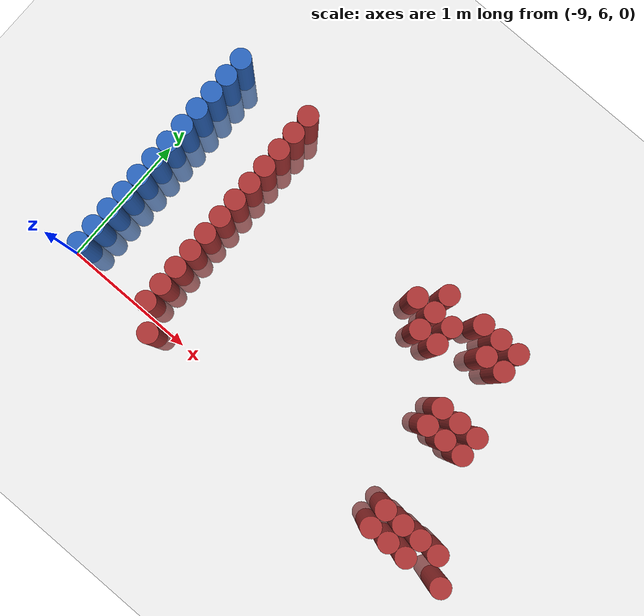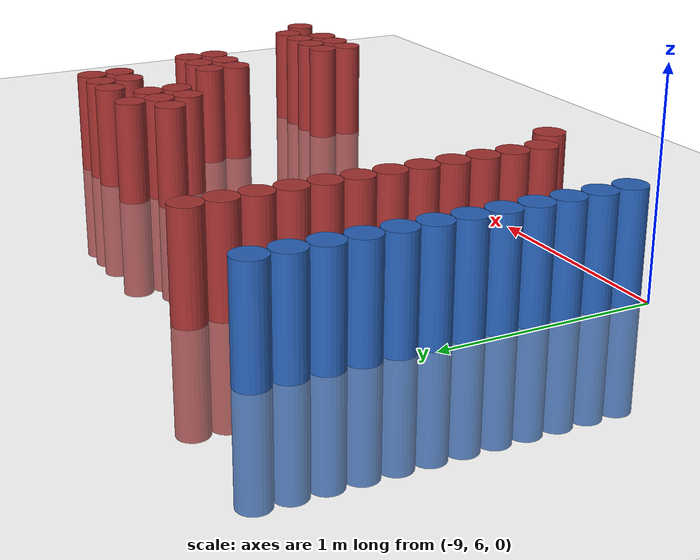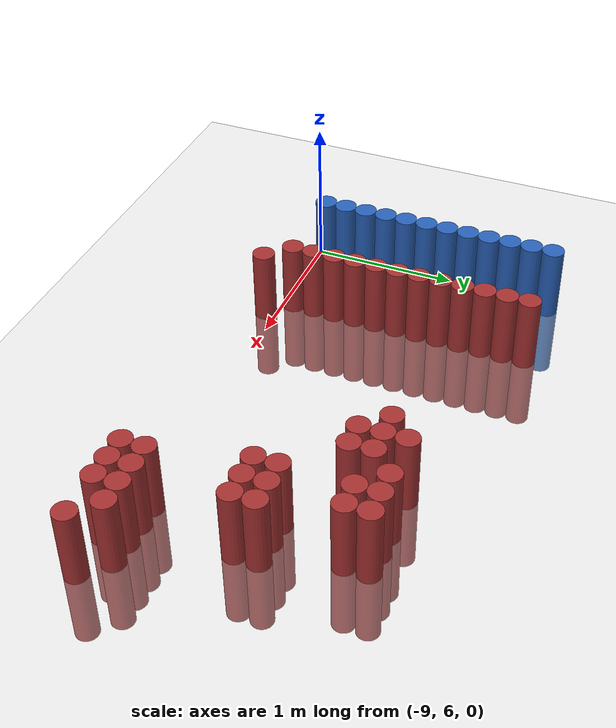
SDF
<sdf version="1.6">
 <world name="default">
  <model name="ground_plane">
   <static>1</static>
   <link name="link">
    <collision name="collision">
     <geometry><plane><normal>0 0 1</normal><size>100 100</size></plane></geometry>
     <surface><friction><ode><mu>100</mu><mu2>50</mu2></ode></friction></surface>
    </collision>
    <visual name="visual">
     <cast_shadows>0</cast_shadows>
     <geometry><plane><normal>0 0 1</normal><size>100 100</size></plane></geometry>
     <material>
      <script><uri>file://media/materials/scripts/gazebo.material</uri><name>Gazebo/Grey</name></script>
     </material>
    </visual>
   </link>
  </model>
  <model name="unit_cylinder_131">
   <static>1</static>
   <pose>-8.925000 6.075000 0.000000 0.000000 0.000000 0.000000</pose>
   <link name="link">
    <inertial>
     <mass>1</mass>
     <inertia><ixx>0.145833</ixx><ixy>0</ixy><ixz>0</ixz><iyy>0.145833</iyy><iyz>0</iyz><izz>0.125</izz></inertia>
    </inertial>
    <collision name="collision">
     <geometry><cylinder><radius>0.075000</radius><length>1</length></cylinder></geometry>
    </collision>
    <visual name="visual">
     <geometry><cylinder><radius>0.075000</radius><length>1</length></cylinder></geometry>
     <material>
      <ambient>0.152000 0.379000 0.720000 1</ambient>
      <diffuse>0.152000 0.379000 0.720000 1</diffuse>
     </material>
     <material>
      <script><name>Gazebo/Grey</name><uri>file://media/materials/scripts/gazebo.material</uri></script>
     </material>
    </visual>
   </link>
  </model>
  <model name="unit_cylinder_132">
   <static>1</static>
   <pose>-8.925000 6.225000 0.000000 0.000000 0.000000 0.000000</pose>
   <link name="link">
    <inertial>
     <mass>1</mass>
     <inertia><ixx>0.145833</ixx><ixy>0</ixy><ixz>0</ixz><iyy>0.145833</iyy><iyz>0</iyz><izz>0.125</izz></inertia>
    </inertial>
    <collision name="collision">
     <geometry><cylinder><radius>0.075000</radius><length>1</length></cylinder></geometry>
    </collision>
    <visual name="visual">
     <geometry><cylinder><radius>0.075000</radius><length>1</length></cylinder></geometry>
     <material>
      <ambient>0.152000 0.379000 0.720000 1</ambient>
      <diffuse>0.152000 0.379000 0.720000 1</diffuse>
     </material>
     <material>
      <script><name>Gazebo/Grey</name><uri>file://media/materials/scripts/gazebo.material</uri></script>
     </material>
    </visual>
   </link>
  </model>
  <model name="unit_cylinder_133">
   <static>1</static>
   <pose>-8.925000 6.375000 0.000000 0.000000 0.000000 0.000000</pose>
   <link name="link">
    <inertial>
     <mass>1</mass>
     <inertia><ixx>0.145833</ixx><ixy>0</ixy><ixz>0</ixz><iyy>0.145833</iyy><iyz>0</iyz><izz>0.125</izz></inertia>
    </inertial>
    <collision name="collision">
     <geometry><cylinder><radius>0.075000</radius><length>1</length></cylinder></geometry>
    </collision>
    <visual name="visual">
     <geometry><cylinder><radius>0.075000</radius><length>1</length></cylinder></geometry>
     <material>
      <ambient>0.152000 0.379000 0.720000 1</ambient>
      <diffuse>0.152000 0.379000 0.720000 1</diffuse>
     </material>
     <material>
      <script><name>Gazebo/Grey</name><uri>file://media/materials/scripts/gazebo.material</uri></script>
     </material>
    </visual>
   </link>
  </model>
  <model name="unit_cylinder_134">
   <static>1</static>
   <pose>-8.925000 6.525000 0.000000 0.000000 0.000000 0.000000</pose>
   <link name="link">
    <inertial>
     <mass>1</mass>
     <inertia><ixx>0.145833</ixx><ixy>0</ixy><ixz>0</ixz><iyy>0.145833</iyy><iyz>0</iyz><izz>0.125</izz></inertia>
    </inertial>
    <collision name="collision">
     <geometry><cylinder><radius>0.075000</radius><length>1</length></cylinder></geometry>
    </collision>
    <visual name="visual">
     <geometry><cylinder><radius>0.075000</radius><length>1</length></cylinder></geometry>
     <material>
      <ambient>0.152000 0.379000 0.720000 1</ambient>
      <diffuse>0.152000 0.379000 0.720000 1</diffuse>
     </material>
     <material>
      <script><name>Gazebo/Grey</name><uri>file://media/materials/scripts/gazebo.material</uri></script>
     </material>
    </visual>
   </link>
  </model>
  <model name="unit_cylinder_135">
   <static>1</static>
   <pose>-8.925000 6.675000 0.000000 0.000000 0.000000 0.000000</pose>
   <link name="link">
    <inertial>
     <mass>1</mass>
     <inertia><ixx>0.145833</ixx><ixy>0</ixy><ixz>0</ixz><iyy>0.145833</iyy><iyz>0</iyz><izz>0.125</izz></inertia>
    </inertial>
    <collision name="collision">
     <geometry><cylinder><radius>0.075000</radius><length>1</length></cylinder></geometry>
    </collision>
    <visual name="visual">
     <geometry><cylinder><radius>0.075000</radius><length>1</length></cylinder></geometry>
     <material>
      <ambient>0.152000 0.379000 0.720000 1</ambient>
      <diffuse>0.152000 0.379000 0.720000 1</diffuse>
     </material>
     <material>
      <script><name>Gazebo/Grey</name><uri>file://media/materials/scripts/gazebo.material</uri></script>
     </material>
    </visual>
   </link>
  </model>
  <model name="unit_cylinder_136">
   <static>1</static>
   <pose>-8.925000 6.825000 0.000000 0.000000 0.000000 0.000000</pose>
   <link name="link">
    <inertial>
     <mass>1</mass>
     <inertia><ixx>0.145833</ixx><ixy>0</ixy><ixz>0</ixz><iyy>0.145833</iyy><iyz>0</iyz><izz>0.125</izz></inertia>
    </inertial>
    <collision name="collision">
     <geometry><cylinder><radius>0.075000</radius><length>1</length></cylinder></geometry>
    </collision>
    <visual name="visual">
     <geometry><cylinder><radius>0.075000</radius><length>1</length></cylinder></geometry>
     <material>
      <ambient>0.152000 0.379000 0.720000 1</ambient>
      <diffuse>0.152000 0.379000 0.720000 1</diffuse>
     </material>
     <material>
      <script><name>Gazebo/Grey</name><uri>file://media/materials/scripts/gazebo.material</uri></script>
     </material>
    </visual>
   </link>
  </model>
  <model name="unit_cylinder_137">
   <static>1</static>
   <pose>-8.925000 6.975000 0.000000 0.000000 0.000000 0.000000</pose>
   <link name="link">
    <inertial>
     <mass>1</mass>
     <inertia><ixx>0.145833</ixx><ixy>0</ixy><ixz>0</ixz><iyy>0.145833</iyy><iyz>0</iyz><izz>0.125</izz></inertia>
    </inertial>
    <collision name="collision">
     <geometry><cylinder><radius>0.075000</radius><length>1</length></cylinder></geometry>
    </collision>
    <visual name="visual">
     <geometry><cylinder><radius>0.075000</radius><length>1</length></cylinder></geometry>
     <material>
      <ambient>0.152000 0.379000 0.720000 1</ambient>
      <diffuse>0.152000 0.379000 0.720000 1</diffuse>
     </material>
     <material>
      <script><name>Gazebo/Grey</name><uri>file://media/materials/scripts/gazebo.material</uri></script>
     </material>
    </visual>
   </link>
  </model>
  <model name="unit_cylinder_138">
   <static>1</static>
   <pose>-8.925000 7.125000 0.000000 0.000000 0.000000 0.000000</pose>
   <link name="link">
    <inertial>
     <mass>1</mass>
     <inertia><ixx>0.145833</ixx><ixy>0</ixy><ixz>0</ixz><iyy>0.145833</iyy><iyz>0</iyz><izz>0.125</izz></inertia>
    </inertial>
    <collision name="collision">
     <geometry><cylinder><radius>0.075000</radius><length>1</length></cylinder></geometry>
    </collision>
    <visual name="visual">
     <geometry><cylinder><radius>0.075000</radius><length>1</length></cylinder></geometry>
     <material>
      <ambient>0.152000 0.379000 0.720000 1</ambient>
      <diffuse>0.152000 0.379000 0.720000 1</diffuse>
     </material>
     <material>
      <script><name>Gazebo/Grey</name><uri>file://media/materials/scripts/gazebo.material</uri></script>
     </material>
    </visual>
   </link>
  </model>
  <model name="unit_cylinder_139">
   <static>1</static>
   <pose>-8.925000 7.275000 0.000000 0.000000 0.000000 0.000000</pose>
   <link name="link">
    <inertial>
     <mass>1</mass>
     <inertia><ixx>0.145833</ixx><ixy>0</ixy><ixz>0</ixz><iyy>0.145833</iyy><iyz>0</iyz><izz>0.125</izz></inertia>
    </inertial>
    <collision name="collision">
     <geometry><cylinder><radius>0.075000</radius><length>1</length></cylinder></geometry>
    </collision>
    <visual name="visual">
     <geometry><cylinder><radius>0.075000</radius><length>1</length></cylinder></geometry>
     <material>
      <ambient>0.152000 0.379000 0.720000 1</ambient>
      <diffuse>0.152000 0.379000 0.720000 1</diffuse>
     </material>
     <material>
      <script><name>Gazebo/Grey</name><uri>file://media/materials/scripts/gazebo.material</uri></script>
     </material>
    </visual>
   </link>
  </model>
  <model name="unit_cylinder_140">
   <static>1</static>
   <pose>-8.925000 7.425000 0.000000 0.000000 0.000000 0.000000</pose>
   <link name="link">
    <inertial>
     <mass>1</mass>
     <inertia><ixx>0.145833</ixx><ixy>0</ixy><ixz>0</ixz><iyy>0.145833</iyy><iyz>0</iyz><izz>0.125</izz></inertia>
    </inertial>
    <collision name="collision">
     <geometry><cylinder><radius>0.075000</radius><length>1</length></cylinder></geometry>
    </collision>
    <visual name="visual">
     <geometry><cylinder><radius>0.075000</radius><length>1</length></cylinder></geometry>
     <material>
      <ambient>0.152000 0.379000 0.720000 1</ambient>
      <diffuse>0.152000 0.379000 0.720000 1</diffuse>
     </material>
     <material>
      <script><name>Gazebo/Grey</name><uri>file://media/materials/scripts/gazebo.material</uri></script>
     </material>
    </visual>
   </link>
  </model>
  <model name="unit_cylinder_141">
   <static>1</static>
   <pose>-8.925000 7.575000 0.000000 0.000000 0.000000 0.000000</pose>
   <link name="link">
    <inertial>
     <mass>1</mass>
     <inertia><ixx>0.145833</ixx><ixy>0</ixy><ixz>0</ixz><iyy>0.145833</iyy><iyz>0</iyz><izz>0.125</izz></inertia>
    </inertial>
    <collision name="collision">
     <geometry><cylinder><radius>0.075000</radius><length>1</length></cylinder></geometry>
    </collision>
    <visual name="visual">
     <geometry><cylinder><radius>0.075000</radius><length>1</length></cylinder></geometry>
     <material>
      <ambient>0.152000 0.379000 0.720000 1</ambient>
      <diffuse>0.152000 0.379000 0.720000 1</diffuse>
     </material>
     <material>
      <script><name>Gazebo/Grey</name><uri>file://media/materials/scripts/gazebo.material</uri></script>
     </material>
    </visual>
   </link>
  </model>
  <model name="unit_cylinder_142">
   <static>1</static>
   <pose>-8.925000 7.725000 0.000000 0.000000 0.000000 0.000000</pose>
   <link name="link">
    <inertial>
     <mass>1</mass>
     <inertia><ixx>0.145833</ixx><ixy>0</ixy><ixz>0</ixz><iyy>0.145833</iyy><iyz>0</iyz><izz>0.125</izz></inertia>
    </inertial>
    <collision name="collision">
     <geometry><cylinder><radius>0.075000</radius><length>1</length></cylinder></geometry>
    </collision>
    <visual name="visual">
     <geometry><cylinder><radius>0.075000</radius><length>1</length></cylinder></geometry>
     <material>
      <ambient>0.152000 0.379000 0.720000 1</ambient>
      <diffuse>0.152000 0.379000 0.720000 1</diffuse>
     </material>
     <material>
      <script><name>Gazebo/Grey</name><uri>file://media/materials/scripts/gazebo.material</uri></script>
     </material>
    </visual>
   </link>
  </model>
  <model name="unit_cylinder_163">
   <static>1</static>
   <pose>-8.325000 6.075000 0.000000 0.000000 0.000000 0.000000</pose>
   <link name="link">
    <inertial>
     <mass>1</mass>
     <inertia><ixx>0.145833</ixx><ixy>0</ixy><ixz>0</ixz><iyy>0.145833</iyy><iyz>0</iyz><izz>0.125</izz></inertia>
    </inertial>
    <collision name="collision">
     <geometry><cylinder><radius>0.075000</radius><length>1</length></cylinder></geometry>
    </collision>
    <visual name="visual">
     <geometry><cylinder><radius>0.075000</radius><length>1</length></cylinder></geometry>
     <material>
      <ambient>0.648000 0.192000 0.192000 1</ambient>
      <diffuse>0.648000 0.192000 0.192000 1</diffuse>
     </material>
     <material>
      <script><name>Gazebo/Grey</name><uri>file://media/materials/scripts/gazebo.material</uri></script>
     </material>
    </visual>
   </link>
  </model>
  <model name="unit_cylinder_164">
   <static>1</static>
   <pose>-8.325000 6.225000 0.000000 0.000000 0.000000 0.000000</pose>
   <link name="link">
    <inertial>
     <mass>1</mass>
     <inertia><ixx>0.145833</ixx><ixy>0</ixy><ixz>0</ixz><iyy>0.145833</iyy><iyz>0</iyz><izz>0.125</izz></inertia>
    </inertial>
    <collision name="collision">
     <geometry><cylinder><radius>0.075000</radius><length>1</length></cylinder></geometry>
    </collision>
    <visual name="visual">
     <geometry><cylinder><radius>0.075000</radius><length>1</length></cylinder></geometry>
     <material>
      <ambient>0.648000 0.192000 0.192000 1</ambient>
      <diffuse>0.648000 0.192000 0.192000 1</diffuse>
     </material>
     <material>
      <script><name>Gazebo/Grey</name><uri>file://media/materials/scripts/gazebo.material</uri></script>
     </material>
    </visual>
   </link>
  </model>
  <model name="unit_cylinder_165">
   <static>1</static>
   <pose>-8.325000 6.375000 0.000000 0.000000 0.000000 0.000000</pose>
   <link name="link">
    <inertial>
     <mass>1</mass>
     <inertia><ixx>0.145833</ixx><ixy>0</ixy><ixz>0</ixz><iyy>0.145833</iyy><iyz>0</iyz><izz>0.125</izz></inertia>
    </inertial>
    <collision name="collision">
     <geometry><cylinder><radius>0.075000</radius><length>1</length></cylinder></geometry>
    </collision>
    <visual name="visual">
     <geometry><cylinder><radius>0.075000</radius><length>1</length></cylinder></geometry>
     <material>
      <ambient>0.648000 0.192000 0.192000 1</ambient>
      <diffuse>0.648000 0.192000 0.192000 1</diffuse>
     </material>
     <material>
      <script><name>Gazebo/Grey</name><uri>file://media/materials/scripts/gazebo.material</uri></script>
     </material>
    </visual>
   </link>
  </model>
  <model name="unit_cylinder_166">
   <static>1</static>
   <pose>-8.325000 6.525000 0.000000 0.000000 0.000000 0.000000</pose>
   <link name="link">
    <inertial>
     <mass>1</mass>
     <inertia><ixx>0.145833</ixx><ixy>0</ixy><ixz>0</ixz><iyy>0.145833</iyy><iyz>0</iyz><izz>0.125</izz></inertia>
    </inertial>
    <collision name="collision">
     <geometry><cylinder><radius>0.075000</radius><length>1</length></cylinder></geometry>
    </collision>
    <visual name="visual">
     <geometry><cylinder><radius>0.075000</radius><length>1</length></cylinder></geometry>
     <material>
      <ambient>0.648000 0.192000 0.192000 1</ambient>
      <diffuse>0.648000 0.192000 0.192000 1</diffuse>
     </material>
     <material>
      <script><name>Gazebo/Grey</name><uri>file://media/materials/scripts/gazebo.material</uri></script>
     </material>
    </visual>
   </link>
  </model>
  <model name="unit_cylinder_167">
   <static>1</static>
   <pose>-8.325000 6.675000 0.000000 0.000000 0.000000 0.000000</pose>
   <link name="link">
    <inertial>
     <mass>1</mass>
     <inertia><ixx>0.145833</ixx><ixy>0</ixy><ixz>0</ixz><iyy>0.145833</iyy><iyz>0</iyz><izz>0.125</izz></inertia>
    </inertial>
    <collision name="collision">
     <geometry><cylinder><radius>0.075000</radius><length>1</length></cylinder></geometry>
    </collision>
    <visual name="visual">
     <geometry><cylinder><radius>0.075000</radius><length>1</length></cylinder></geometry>
     <material>
      <ambient>0.648000 0.192000 0.192000 1</ambient>
      <diffuse>0.648000 0.192000 0.192000 1</diffuse>
     </material>
     <material>
      <script><name>Gazebo/Grey</name><uri>file://media/materials/scripts/gazebo.material</uri></script>
     </material>
    </visual>
   </link>
  </model>
  <model name="unit_cylinder_168">
   <static>1</static>
   <pose>-8.325000 6.825000 0.000000 0.000000 0.000000 0.000000</pose>
   <link name="link">
    <inertial>
     <mass>1</mass>
     <inertia><ixx>0.145833</ixx><ixy>0</ixy><ixz>0</ixz><iyy>0.145833</iyy><iyz>0</iyz><izz>0.125</izz></inertia>
    </inertial>
    <collision name="collision">
     <geometry><cylinder><radius>0.075000</radius><length>1</length></cylinder></geometry>
    </collision>
    <visual name="visual">
     <geometry><cylinder><radius>0.075000</radius><length>1</length></cylinder></geometry>
     <material>
      <ambient>0.648000 0.192000 0.192000 1</ambient>
      <diffuse>0.648000 0.192000 0.192000 1</diffuse>
     </material>
     <material>
      <script><name>Gazebo/Grey</name><uri>file://media/materials/scripts/gazebo.material</uri></script>
     </material>
    </visual>
   </link>
  </model>
  <model name="unit_cylinder_169">
   <static>1</static>
   <pose>-8.325000 6.975000 0.000000 0.000000 0.000000 0.000000</pose>
   <link name="link">
    <inertial>
     <mass>1</mass>
     <inertia><ixx>0.145833</ixx><ixy>0</ixy><ixz>0</ixz><iyy>0.145833</iyy><iyz>0</iyz><izz>0.125</izz></inertia>
    </inertial>
    <collision name="collision">
     <geometry><cylinder><radius>0.075000</radius><length>1</length></cylinder></geometry>
    </collision>
    <visual name="visual">
     <geometry><cylinder><radius>0.075000</radius><length>1</length></cylinder></geometry>
     <material>
      <ambient>0.648000 0.192000 0.192000 1</ambient>
      <diffuse>0.648000 0.192000 0.192000 1</diffuse>
     </material>
     <material>
      <script><name>Gazebo/Grey</name><uri>file://media/materials/scripts/gazebo.material</uri></script>
     </material>
    </visual>
   </link>
  </model>
  <model name="unit_cylinder_170">
   <static>1</static>
   <pose>-8.325000 7.125000 0.000000 0.000000 0.000000 0.000000</pose>
   <link name="link">
    <inertial>
     <mass>1</mass>
     <inertia><ixx>0.145833</ixx><ixy>0</ixy><ixz>0</ixz><iyy>0.145833</iyy><iyz>0</iyz><izz>0.125</izz></inertia>
    </inertial>
    <collision name="collision">
     <geometry><cylinder><radius>0.075000</radius><length>1</length></cylinder></geometry>
    </collision>
    <visual name="visual">
     <geometry><cylinder><radius>0.075000</radius><length>1</length></cylinder></geometry>
     <material>
      <ambient>0.648000 0.192000 0.192000 1</ambient>
      <diffuse>0.648000 0.192000 0.192000 1</diffuse>
     </material>
     <material>
      <script><name>Gazebo/Grey</name><uri>file://media/materials/scripts/gazebo.material</uri></script>
     </material>
    </visual>
   </link>
  </model>
  <model name="unit_cylinder_171">
   <static>1</static>
   <pose>-8.325000 7.275000 0.000000 0.000000 0.000000 0.000000</pose>
   <link name="link">
    <inertial>
     <mass>1</mass>
     <inertia><ixx>0.145833</ixx><ixy>0</ixy><ixz>0</ixz><iyy>0.145833</iyy><iyz>0</iyz><izz>0.125</izz></inertia>
    </inertial>
    <collision name="collision">
     <geometry><cylinder><radius>0.075000</radius><length>1</length></cylinder></geometry>
    </collision>
    <visual name="visual">
     <geometry><cylinder><radius>0.075000</radius><length>1</length></cylinder></geometry>
     <material>
      <ambient>0.648000 0.192000 0.192000 1</ambient>
      <diffuse>0.648000 0.192000 0.192000 1</diffuse>
     </material>
     <material>
      <script><name>Gazebo/Grey</name><uri>file://media/materials/scripts/gazebo.material</uri></script>
     </material>
    </visual>
   </link>
  </model>
  <model name="unit_cylinder_172">
   <static>1</static>
   <pose>-8.325000 7.425000 0.000000 0.000000 0.000000 0.000000</pose>
   <link name="link">
    <inertial>
     <mass>1</mass>
     <inertia><ixx>0.145833</ixx><ixy>0</ixy><ixz>0</ixz><iyy>0.145833</iyy><iyz>0</iyz><izz>0.125</izz></inertia>
    </inertial>
    <collision name="collision">
     <geometry><cylinder><radius>0.075000</radius><length>1</length></cylinder></geometry>
    </collision>
    <visual name="visual">
     <geometry><cylinder><radius>0.075000</radius><length>1</length></cylinder></geometry>
     <material>
      <ambient>0.648000 0.192000 0.192000 1</ambient>
      <diffuse>0.648000 0.192000 0.192000 1</diffuse>
     </material>
     <material>
      <script><name>Gazebo/Grey</name><uri>file://media/materials/scripts/gazebo.material</uri></script>
     </material>
    </visual>
   </link>
  </model>
  <model name="unit_cylinder_173">
   <static>1</static>
   <pose>-8.325000 7.575000 0.000000 0.000000 0.000000 0.000000</pose>
   <link name="link">
    <inertial>
     <mass>1</mass>
     <inertia><ixx>0.145833</ixx><ixy>0</ixy><ixz>0</ixz><iyy>0.145833</iyy><iyz>0</iyz><izz>0.125</izz></inertia>
    </inertial>
    <collision name="collision">
     <geometry><cylinder><radius>0.075000</radius><length>1</length></cylinder></geometry>
    </collision>
    <visual name="visual">
     <geometry><cylinder><radius>0.075000</radius><length>1</length></cylinder></geometry>
     <material>
      <ambient>0.648000 0.192000 0.192000 1</ambient>
      <diffuse>0.648000 0.192000 0.192000 1</diffuse>
     </material>
     <material>
      <script><name>Gazebo/Grey</name><uri>file://media/materials/scripts/gazebo.material</uri></script>
     </material>
    </visual>
   </link>
  </model>
  <model name="unit_cylinder_174">
   <static>1</static>
   <pose>-8.325000 7.725000 0.000000 0.000000 0.000000 0.000000</pose>
   <link name="link">
    <inertial>
     <mass>1</mass>
     <inertia><ixx>0.145833</ixx><ixy>0</ixy><ixz>0</ixz><iyy>0.145833</iyy><iyz>0</iyz><izz>0.125</izz></inertia>
    </inertial>
    <collision name="collision">
     <geometry><cylinder><radius>0.075000</radius><length>1</length></cylinder></geometry>
    </collision>
    <visual name="visual">
     <geometry><cylinder><radius>0.075000</radius><length>1</length></cylinder></geometry>
     <material>
      <ambient>0.648000 0.192000 0.192000 1</ambient>
      <diffuse>0.648000 0.192000 0.192000 1</diffuse>
     </material>
     <material>
      <script><name>Gazebo/Grey</name><uri>file://media/materials/scripts/gazebo.material</uri></script>
     </material>
    </visual>
   </link>
  </model>
  <model name="unit_cylinder_184">
   <static>1</static>
   <pose>-8.175000 5.925000 0.000000 0.000000 0.000000 0.000000</pose>
   <link name="link">
    <inertial>
     <mass>1</mass>
     <inertia><ixx>0.145833</ixx><ixy>0</ixy><ixz>0</ixz><iyy>0.145833</iyy><iyz>0</iyz><izz>0.125</izz></inertia>
    </inertial>
    <collision name="collision">
     <geometry><cylinder><radius>0.075000</radius><length>1</length></cylinder></geometry>
    </collision>
    <visual name="visual">
     <geometry><cylinder><radius>0.075000</radius><length>1</length></cylinder></geometry>
     <material>
      <ambient>0.648000 0.192000 0.192000 1</ambient>
      <diffuse>0.648000 0.192000 0.192000 1</diffuse>
     </material>
     <material>
      <script><name>Gazebo/Grey</name><uri>file://media/materials/scripts/gazebo.material</uri></script>
     </material>
    </visual>
   </link>
  </model>
  <model name="unit_cylinder_214">
   <static>1</static>
   <pose>-6.975000 7.275000 0.000000 0.000000 0.000000 0.000000</pose>
   <link name="link">
    <inertial>
     <mass>1</mass>
     <inertia><ixx>0.145833</ixx><ixy>0</ixy><ixz>0</ixz><iyy>0.145833</iyy><iyz>0</iyz><izz>0.125</izz></inertia>
    </inertial>
    <collision name="collision">
     <geometry><cylinder><radius>0.075000</radius><length>1</length></cylinder></geometry>
    </collision>
    <visual name="visual">
     <geometry><cylinder><radius>0.075000</radius><length>1</length></cylinder></geometry>
     <material>
      <ambient>0.648000 0.192000 0.192000 1</ambient>
      <diffuse>0.648000 0.192000 0.192000 1</diffuse>
     </material>
     <material>
      <script><name>Gazebo/Grey</name><uri>file://media/materials/scripts/gazebo.material</uri></script>
     </material>
    </visual>
   </link>
  </model>
  <model name="unit_cylinder_218">
   <static>1</static>
   <pose>-6.825000 7.125000 0.000000 0.000000 0.000000 0.000000</pose>
   <link name="link">
    <inertial>
     <mass>1</mass>
     <inertia><ixx>0.145833</ixx><ixy>0</ixy><ixz>0</ixz><iyy>0.145833</iyy><iyz>0</iyz><izz>0.125</izz></inertia>
    </inertial>
    <collision name="collision">
     <geometry><cylinder><radius>0.075000</radius><length>1</length></cylinder></geometry>
    </collision>
    <visual name="visual">
     <geometry><cylinder><radius>0.075000</radius><length>1</length></cylinder></geometry>
     <material>
      <ambient>0.648000 0.192000 0.192000 1</ambient>
      <diffuse>0.648000 0.192000 0.192000 1</diffuse>
     </material>
     <material>
      <script><name>Gazebo/Grey</name><uri>file://media/materials/scripts/gazebo.material</uri></script>
     </material>
    </visual>
   </link>
  </model>
  <model name="unit_cylinder_219">
   <static>1</static>
   <pose>-6.825000 7.275000 0.000000 0.000000 0.000000 0.000000</pose>
   <link name="link">
    <inertial>
     <mass>1</mass>
     <inertia><ixx>0.145833</ixx><ixy>0</ixy><ixz>0</ixz><iyy>0.145833</iyy><iyz>0</iyz><izz>0.125</izz></inertia>
    </inertial>
    <collision name="collision">
     <geometry><cylinder><radius>0.075000</radius><length>1</length></cylinder></geometry>
    </collision>
    <visual name="visual">
     <geometry><cylinder><radius>0.075000</radius><length>1</length></cylinder></geometry>
     <material>
      <ambient>0.648000 0.192000 0.192000 1</ambient>
      <diffuse>0.648000 0.192000 0.192000 1</diffuse>
     </material>
     <material>
      <script><name>Gazebo/Grey</name><uri>file://media/materials/scripts/gazebo.material</uri></script>
     </material>
    </visual>
   </link>
  </model>
  <model name="unit_cylinder_220">
   <static>1</static>
   <pose>-6.825000 7.425000 0.000000 0.000000 0.000000 0.000000</pose>
   <link name="link">
    <inertial>
     <mass>1</mass>
     <inertia><ixx>0.145833</ixx><ixy>0</ixy><ixz>0</ixz><iyy>0.145833</iyy><iyz>0</iyz><izz>0.125</izz></inertia>
    </inertial>
    <collision name="collision">
     <geometry><cylinder><radius>0.075000</radius><length>1</length></cylinder></geometry>
    </collision>
    <visual name="visual">
     <geometry><cylinder><radius>0.075000</radius><length>1</length></cylinder></geometry>
     <material>
      <ambient>0.648000 0.192000 0.192000 1</ambient>
      <diffuse>0.648000 0.192000 0.192000 1</diffuse>
     </material>
     <material>
      <script><name>Gazebo/Grey</name><uri>file://media/materials/scripts/gazebo.material</uri></script>
     </material>
    </visual>
   </link>
  </model>
  <model name="unit_cylinder_225">
   <static>1</static>
   <pose>-6.675000 7.125000 0.000000 0.000000 0.000000 0.000000</pose>
   <link name="link">
    <inertial>
     <mass>1</mass>
     <inertia><ixx>0.145833</ixx><ixy>0</ixy><ixz>0</ixz><iyy>0.145833</iyy><iyz>0</iyz><izz>0.125</izz></inertia>
    </inertial>
    <collision name="collision">
     <geometry><cylinder><radius>0.075000</radius><length>1</length></cylinder></geometry>
    </collision>
    <visual name="visual">
     <geometry><cylinder><radius>0.075000</radius><length>1</length></cylinder></geometry>
     <material>
      <ambient>0.648000 0.192000 0.192000 1</ambient>
      <diffuse>0.648000 0.192000 0.192000 1</diffuse>
     </material>
     <material>
      <script><name>Gazebo/Grey</name><uri>file://media/materials/scripts/gazebo.material</uri></script>
     </material>
    </visual>
   </link>
  </model>
  <model name="unit_cylinder_226">
   <static>1</static>
   <pose>-6.675000 7.275000 0.000000 0.000000 0.000000 0.000000</pose>
   <link name="link">
    <inertial>
     <mass>1</mass>
     <inertia><ixx>0.145833</ixx><ixy>0</ixy><ixz>0</ixz><iyy>0.145833</iyy><iyz>0</iyz><izz>0.125</izz></inertia>
    </inertial>
    <collision name="collision">
     <geometry><cylinder><radius>0.075000</radius><length>1</length></cylinder></geometry>
    </collision>
    <visual name="visual">
     <geometry><cylinder><radius>0.075000</radius><length>1</length></cylinder></geometry>
     <material>
      <ambient>0.648000 0.192000 0.192000 1</ambient>
      <diffuse>0.648000 0.192000 0.192000 1</diffuse>
     </material>
     <material>
      <script><name>Gazebo/Grey</name><uri>file://media/materials/scripts/gazebo.material</uri></script>
     </material>
    </visual>
   </link>
  </model>
  <model name="unit_cylinder_227">
   <static>1</static>
   <pose>-6.525000 7.425000 0.000000 0.000000 0.000000 0.000000</pose>
   <link name="link">
    <inertial>
     <mass>1</mass>
     <inertia><ixx>0.145833</ixx><ixy>0</ixy><ixz>0</ixz><iyy>0.145833</iyy><iyz>0</iyz><izz>0.125</izz></inertia>
    </inertial>
    <collision name="collision">
     <geometry><cylinder><radius>0.075000</radius><length>1</length></cylinder></geometry>
    </collision>
    <visual name="visual">
     <geometry><cylinder><radius>0.075000</radius><length>1</length></cylinder></geometry>
     <material>
      <ambient>0.648000 0.192000 0.192000 1</ambient>
      <diffuse>0.648000 0.192000 0.192000 1</diffuse>
     </material>
     <material>
      <script><name>Gazebo/Grey</name><uri>file://media/materials/scripts/gazebo.material</uri></script>
     </material>
    </visual>
   </link>
  </model>
  <model name="unit_cylinder_228">
   <static>1</static>
   <pose>-6.375000 6.675000 0.000000 0.000000 0.000000 0.000000</pose>
   <link name="link">
    <inertial>
     <mass>1</mass>
     <inertia><ixx>0.145833</ixx><ixy>0</ixy><ixz>0</ixz><iyy>0.145833</iyy><iyz>0</iyz><izz>0.125</izz></inertia>
    </inertial>
    <collision name="collision">
     <geometry><cylinder><radius>0.075000</radius><length>1</length></cylinder></geometry>
    </collision>
    <visual name="visual">
     <geometry><cylinder><radius>0.075000</radius><length>1</length></cylinder></geometry>
     <material>
      <ambient>0.648000 0.192000 0.192000 1</ambient>
      <diffuse>0.648000 0.192000 0.192000 1</diffuse>
     </material>
     <material>
      <script><name>Gazebo/Grey</name><uri>file://media/materials/scripts/gazebo.material</uri></script>
     </material>
    </visual>
   </link>
  </model>
  <model name="unit_cylinder_229">
   <static>1</static>
   <pose>-6.375000 6.825000 0.000000 0.000000 0.000000 0.000000</pose>
   <link name="link">
    <inertial>
     <mass>1</mass>
     <inertia><ixx>0.145833</ixx><ixy>0</ixy><ixz>0</ixz><iyy>0.145833</iyy><iyz>0</iyz><izz>0.125</izz></inertia>
    </inertial>
    <collision name="collision">
     <geometry><cylinder><radius>0.075000</radius><length>1</length></cylinder></geometry>
    </collision>
    <visual name="visual">
     <geometry><cylinder><radius>0.075000</radius><length>1</length></cylinder></geometry>
     <material>
      <ambient>0.648000 0.192000 0.192000 1</ambient>
      <diffuse>0.648000 0.192000 0.192000 1</diffuse>
     </material>
     <material>
      <script><name>Gazebo/Grey</name><uri>file://media/materials/scripts/gazebo.material</uri></script>
     </material>
    </visual>
   </link>
  </model>
  <model name="unit_cylinder_230">
   <static>1</static>
   <pose>-6.375000 7.275000 0.000000 0.000000 0.000000 0.000000</pose>
   <link name="link">
    <inertial>
     <mass>1</mass>
     <inertia><ixx>0.145833</ixx><ixy>0</ixy><ixz>0</ixz><iyy>0.145833</iyy><iyz>0</iyz><izz>0.125</izz></inertia>
    </inertial>
    <collision name="collision">
     <geometry><cylinder><radius>0.075000</radius><length>1</length></cylinder></geometry>
    </collision>
    <visual name="visual">
     <geometry><cylinder><radius>0.075000</radius><length>1</length></cylinder></geometry>
     <material>
      <ambient>0.648000 0.192000 0.192000 1</ambient>
      <diffuse>0.648000 0.192000 0.192000 1</diffuse>
     </material>
     <material>
      <script><name>Gazebo/Grey</name><uri>file://media/materials/scripts/gazebo.material</uri></script>
     </material>
    </visual>
   </link>
  </model>
  <model name="unit_cylinder_231">
   <static>1</static>
   <pose>-6.375000 7.425000 0.000000 0.000000 0.000000 0.000000</pose>
   <link name="link">
    <inertial>
     <mass>1</mass>
     <inertia><ixx>0.145833</ixx><ixy>0</ixy><ixz>0</ixz><iyy>0.145833</iyy><iyz>0</iyz><izz>0.125</izz></inertia>
    </inertial>
    <collision name="collision">
     <geometry><cylinder><radius>0.075000</radius><length>1</length></cylinder></geometry>
    </collision>
    <visual name="visual">
     <geometry><cylinder><radius>0.075000</radius><length>1</length></cylinder></geometry>
     <material>
      <ambient>0.648000 0.192000 0.192000 1</ambient>
      <diffuse>0.648000 0.192000 0.192000 1</diffuse>
     </material>
     <material>
      <script><name>Gazebo/Grey</name><uri>file://media/materials/scripts/gazebo.material</uri></script>
     </material>
    </visual>
   </link>
  </model>
  <model name="unit_cylinder_232">
   <static>1</static>
   <pose>-6.225000 5.925000 0.000000 0.000000 0.000000 0.000000</pose>
   <link name="link">
    <inertial>
     <mass>1</mass>
     <inertia><ixx>0.145833</ixx><ixy>0</ixy><ixz>0</ixz><iyy>0.145833</iyy><iyz>0</iyz><izz>0.125</izz></inertia>
    </inertial>
    <collision name="collision">
     <geometry><cylinder><radius>0.075000</radius><length>1</length></cylinder></geometry>
    </collision>
    <visual name="visual">
     <geometry><cylinder><radius>0.075000</radius><length>1</length></cylinder></geometry>
     <material>
      <ambient>0.648000 0.192000 0.192000 1</ambient>
      <diffuse>0.648000 0.192000 0.192000 1</diffuse>
     </material>
     <material>
      <script><name>Gazebo/Grey</name><uri>file://media/materials/scripts/gazebo.material</uri></script>
     </material>
    </visual>
   </link>
  </model>
  <model name="unit_cylinder_233">
   <static>1</static>
   <pose>-6.225000 6.075000 0.000000 0.000000 0.000000 0.000000</pose>
   <link name="link">
    <inertial>
     <mass>1</mass>
     <inertia><ixx>0.145833</ixx><ixy>0</ixy><ixz>0</ixz><iyy>0.145833</iyy><iyz>0</iyz><izz>0.125</izz></inertia>
    </inertial>
    <collision name="collision">
     <geometry><cylinder><radius>0.075000</radius><length>1</length></cylinder></geometry>
    </collision>
    <visual name="visual">
     <geometry><cylinder><radius>0.075000</radius><length>1</length></cylinder></geometry>
     <material>
      <ambient>0.648000 0.192000 0.192000 1</ambient>
      <diffuse>0.648000 0.192000 0.192000 1</diffuse>
     </material>
     <material>
      <script><name>Gazebo/Grey</name><uri>file://media/materials/scripts/gazebo.material</uri></script>
     </material>
    </visual>
   </link>
  </model>
  <model name="unit_cylinder_234">
   <static>1</static>
   <pose>-6.225000 6.675000 0.000000 0.000000 0.000000 0.000000</pose>
   <link name="link">
    <inertial>
     <mass>1</mass>
     <inertia><ixx>0.145833</ixx><ixy>0</ixy><ixz>0</ixz><iyy>0.145833</iyy><iyz>0</iyz><izz>0.125</izz></inertia>
    </inertial>
    <collision name="collision">
     <geometry><cylinder><radius>0.075000</radius><length>1</length></cylinder></geometry>
    </collision>
    <visual name="visual">
     <geometry><cylinder><radius>0.075000</radius><length>1</length></cylinder></geometry>
     <material>
      <ambient>0.648000 0.192000 0.192000 1</ambient>
      <diffuse>0.648000 0.192000 0.192000 1</diffuse>
     </material>
     <material>
      <script><name>Gazebo/Grey</name><uri>file://media/materials/scripts/gazebo.material</uri></script>
     </material>
    </visual>
   </link>
  </model>
  <model name="unit_cylinder_235">
   <static>1</static>
   <pose>-6.225000 6.825000 0.000000 0.000000 0.000000 0.000000</pose>
   <link name="link">
    <inertial>
     <mass>1</mass>
     <inertia><ixx>0.145833</ixx><ixy>0</ixy><ixz>0</ixz><iyy>0.145833</iyy><iyz>0</iyz><izz>0.125</izz></inertia>
    </inertial>
    <collision name="collision">
     <geometry><cylinder><radius>0.075000</radius><length>1</length></cylinder></geometry>
    </collision>
    <visual name="visual">
     <geometry><cylinder><radius>0.075000</radius><length>1</length></cylinder></geometry>
     <material>
      <ambient>0.648000 0.192000 0.192000 1</ambient>
      <diffuse>0.648000 0.192000 0.192000 1</diffuse>
     </material>
     <material>
      <script><name>Gazebo/Grey</name><uri>file://media/materials/scripts/gazebo.material</uri></script>
     </material>
    </visual>
   </link>
  </model>
  <model name="unit_cylinder_236">
   <static>1</static>
   <pose>-6.225000 7.275000 0.000000 0.000000 0.000000 0.000000</pose>
   <link name="link">
    <inertial>
     <mass>1</mass>
     <inertia><ixx>0.145833</ixx><ixy>0</ixy><ixz>0</ixz><iyy>0.145833</iyy><iyz>0</iyz><izz>0.125</izz></inertia>
    </inertial>
    <collision name="collision">
     <geometry><cylinder><radius>0.075000</radius><length>1</length></cylinder></geometry>
    </collision>
    <visual name="visual">
     <geometry><cylinder><radius>0.075000</radius><length>1</length></cylinder></geometry>
     <material>
      <ambient>0.648000 0.192000 0.192000 1</ambient>
      <diffuse>0.648000 0.192000 0.192000 1</diffuse>
     </material>
     <material>
      <script><name>Gazebo/Grey</name><uri>file://media/materials/scripts/gazebo.material</uri></script>
     </material>
    </visual>
   </link>
  </model>
  <model name="unit_cylinder_237">
   <static>1</static>
   <pose>-6.225000 7.425000 0.000000 0.000000 0.000000 0.000000</pose>
   <link name="link">
    <inertial>
     <mass>1</mass>
     <inertia><ixx>0.145833</ixx><ixy>0</ixy><ixz>0</ixz><iyy>0.145833</iyy><iyz>0</iyz><izz>0.125</izz></inertia>
    </inertial>
    <collision name="collision">
     <geometry><cylinder><radius>0.075000</radius><length>1</length></cylinder></geometry>
    </collision>
    <visual name="visual">
     <geometry><cylinder><radius>0.075000</radius><length>1</length></cylinder></geometry>
     <material>
      <ambient>0.648000 0.192000 0.192000 1</ambient>
      <diffuse>0.648000 0.192000 0.192000 1</diffuse>
     </material>
     <material>
      <script><name>Gazebo/Grey</name><uri>file://media/materials/scripts/gazebo.material</uri></script>
     </material>
    </visual>
   </link>
  </model>
  <model name="unit_cylinder_240">
   <static>1</static>
   <pose>-6.075000 5.925000 0.000000 0.000000 0.000000 0.000000</pose>
   <link name="link">
    <inertial>
     <mass>1</mass>
     <inertia><ixx>0.145833</ixx><ixy>0</ixy><ixz>0</ixz><iyy>0.145833</iyy><iyz>0</iyz><izz>0.125</izz></inertia>
    </inertial>
    <collision name="collision">
     <geometry><cylinder><radius>0.075000</radius><length>1</length></cylinder></geometry>
    </collision>
    <visual name="visual">
     <geometry><cylinder><radius>0.075000</radius><length>1</length></cylinder></geometry>
     <material>
      <ambient>0.648000 0.192000 0.192000 1</ambient>
      <diffuse>0.648000 0.192000 0.192000 1</diffuse>
     </material>
     <material>
      <script><name>Gazebo/Grey</name><uri>file://media/materials/scripts/gazebo.material</uri></script>
     </material>
    </visual>
   </link>
  </model>
  <model name="unit_cylinder_241">
   <static>1</static>
   <pose>-6.075000 6.075000 0.000000 0.000000 0.000000 0.000000</pose>
   <link name="link">
    <inertial>
     <mass>1</mass>
     <inertia><ixx>0.145833</ixx><ixy>0</ixy><ixz>0</ixz><iyy>0.145833</iyy><iyz>0</iyz><izz>0.125</izz></inertia>
    </inertial>
    <collision name="collision">
     <geometry><cylinder><radius>0.075000</radius><length>1</length></cylinder></geometry>
    </collision>
    <visual name="visual">
     <geometry><cylinder><radius>0.075000</radius><length>1</length></cylinder></geometry>
     <material>
      <ambient>0.648000 0.192000 0.192000 1</ambient>
      <diffuse>0.648000 0.192000 0.192000 1</diffuse>
     </material>
     <material>
      <script><name>Gazebo/Grey</name><uri>file://media/materials/scripts/gazebo.material</uri></script>
     </material>
    </visual>
   </link>
  </model>
  <model name="unit_cylinder_242">
   <static>1</static>
   <pose>-6.075000 6.675000 0.000000 0.000000 0.000000 0.000000</pose>
   <link name="link">
    <inertial>
     <mass>1</mass>
     <inertia><ixx>0.145833</ixx><ixy>0</ixy><ixz>0</ixz><iyy>0.145833</iyy><iyz>0</iyz><izz>0.125</izz></inertia>
    </inertial>
    <collision name="collision">
     <geometry><cylinder><radius>0.075000</radius><length>1</length></cylinder></geometry>
    </collision>
    <visual name="visual">
     <geometry><cylinder><radius>0.075000</radius><length>1</length></cylinder></geometry>
     <material>
      <ambient>0.648000 0.192000 0.192000 1</ambient>
      <diffuse>0.648000 0.192000 0.192000 1</diffuse>
     </material>
     <material>
      <script><name>Gazebo/Grey</name><uri>file://media/materials/scripts/gazebo.material</uri></script>
     </material>
    </visual>
   </link>
  </model>
  <model name="unit_cylinder_243">
   <static>1</static>
   <pose>-6.075000 6.825000 0.000000 0.000000 0.000000 0.000000</pose>
   <link name="link">
    <inertial>
     <mass>1</mass>
     <inertia><ixx>0.145833</ixx><ixy>0</ixy><ixz>0</ixz><iyy>0.145833</iyy><iyz>0</iyz><izz>0.125</izz></inertia>
    </inertial>
    <collision name="collision">
     <geometry><cylinder><radius>0.075000</radius><length>1</length></cylinder></geometry>
    </collision>
    <visual name="visual">
     <geometry><cylinder><radius>0.075000</radius><length>1</length></cylinder></geometry>
     <material>
      <ambient>0.648000 0.192000 0.192000 1</ambient>
      <diffuse>0.648000 0.192000 0.192000 1</diffuse>
     </material>
     <material>
      <script><name>Gazebo/Grey</name><uri>file://media/materials/scripts/gazebo.material</uri></script>
     </material>
    </visual>
   </link>
  </model>
  <model name="unit_cylinder_246">
   <static>1</static>
   <pose>-5.925000 5.925000 0.000000 0.000000 0.000000 0.000000</pose>
   <link name="link">
    <inertial>
     <mass>1</mass>
     <inertia><ixx>0.145833</ixx><ixy>0</ixy><ixz>0</ixz><iyy>0.145833</iyy><iyz>0</iyz><izz>0.125</izz></inertia>
    </inertial>
    <collision name="collision">
     <geometry><cylinder><radius>0.075000</radius><length>1</length></cylinder></geometry>
    </collision>
    <visual name="visual">
     <geometry><cylinder><radius>0.075000</radius><length>1</length></cylinder></geometry>
     <material>
      <ambient>0.648000 0.192000 0.192000 1</ambient>
      <diffuse>0.648000 0.192000 0.192000 1</diffuse>
     </material>
     <material>
      <script><name>Gazebo/Grey</name><uri>file://media/materials/scripts/gazebo.material</uri></script>
     </material>
    </visual>
   </link>
  </model>
  <model name="unit_cylinder_247">
   <static>1</static>
   <pose>-5.925000 6.075000 0.000000 0.000000 0.000000 0.000000</pose>
   <link name="link">
    <inertial>
     <mass>1</mass>
     <inertia><ixx>0.145833</ixx><ixy>0</ixy><ixz>0</ixz><iyy>0.145833</iyy><iyz>0</iyz><izz>0.125</izz></inertia>
    </inertial>
    <collision name="collision">
     <geometry><cylinder><radius>0.075000</radius><length>1</length></cylinder></geometry>
    </collision>
    <visual name="visual">
     <geometry><cylinder><radius>0.075000</radius><length>1</length></cylinder></geometry>
     <material>
      <ambient>0.648000 0.192000 0.192000 1</ambient>
      <diffuse>0.648000 0.192000 0.192000 1</diffuse>
     </material>
     <material>
      <script><name>Gazebo/Grey</name><uri>file://media/materials/scripts/gazebo.material</uri></script>
     </material>
    </visual>
   </link>
  </model>
  <model name="unit_cylinder_252">
   <static>1</static>
   <pose>-5.775000 6.075000 0.000000 0.000000 0.000000 0.000000</pose>
   <link name="link">
    <inertial>
     <mass>1</mass>
     <inertia><ixx>0.145833</ixx><ixy>0</ixy><ixz>0</ixz><iyy>0.145833</iyy><iyz>0</iyz><izz>0.125</izz></inertia>
    </inertial>
    <collision name="collision">
     <geometry><cylinder><radius>0.075000</radius><length>1</length></cylinder></geometry>
    </collision>
    <visual name="visual">
     <geometry><cylinder><radius>0.075000</radius><length>1</length></cylinder></geometry>
     <material>
      <ambient>0.648000 0.192000 0.192000 1</ambient>
      <diffuse>0.648000 0.192000 0.192000 1</diffuse>
     </material>
     <material>
      <script><name>Gazebo/Grey</name><uri>file://media/materials/scripts/gazebo.material</uri></script>
     </material>
    </visual>
   </link>
  </model>
  <model name="unit_cylinder_258">
   <static>1</static>
   <pose>-5.625000 5.925000 0.000000 0.000000 0.000000 0.000000</pose>
   <link name="link">
    <inertial>
     <mass>1</mass>
     <inertia><ixx>0.145833</ixx><ixy>0</ixy><ixz>0</ixz><iyy>0.145833</iyy><iyz>0</iyz><izz>0.125</izz></inertia>
    </inertial>
    <collision name="collision">
     <geometry><cylinder><radius>0.075000</radius><length>1</length></cylinder></geometry>
    </collision>
    <visual name="visual">
     <geometry><cylinder><radius>0.075000</radius><length>1</length></cylinder></geometry>
     <material>
      <ambient>0.648000 0.192000 0.192000 1</ambient>
      <diffuse>0.648000 0.192000 0.192000 1</diffuse>
     </material>
     <material>
      <script><name>Gazebo/Grey</name><uri>file://media/materials/scripts/gazebo.material</uri></script>
     </material>
    </visual>
   </link>
  </model>
 </world>
</sdf>
